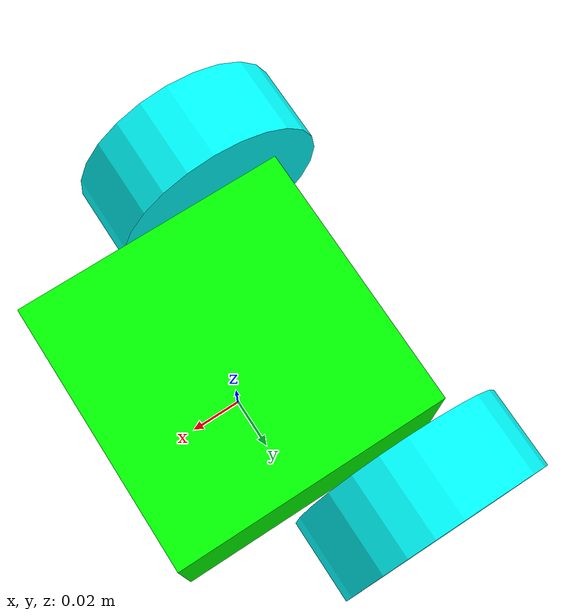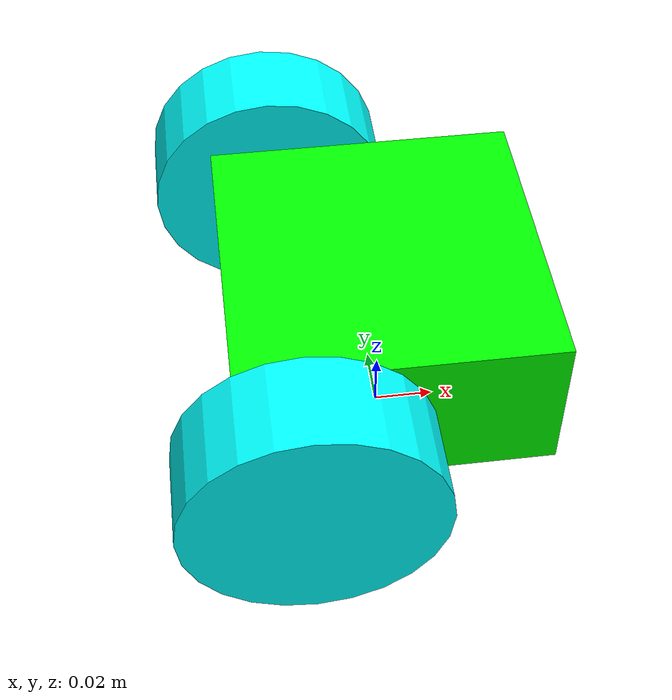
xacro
<?xml version="1.0"?>
<robot name="model" xmlns:xacro="http://ros.org/wiki/xacro">
    <!-- Materials -->
    <material name="red">
        <color rgba="1.0 0.0 0.0 1.0"/>
    </material>

    <material name="green">
        <color rgba="0.0 1.0 0.0 1.0"/>
    </material>

    <material name="blue">
        <color rgba="0.0 0.0 1.0 1.0"/>
    </material>

    <material name="yellow">
        <color rgba="1.0 1.0 0.0 1.0"/>
    </material>

    <material name="white">
        <color rgba="1.0 1.0 1.0 1.0"/>
    </material>

    <material name="aqua_blue">
        <color rgba="0.0 1.0 1.0 1.0"/>
    </material>

    <!-- Xacro properties -->
    <xacro:property name="robot_name" value="robot"/>
    <xacro:property name="spwan_height" value="0.05"/>

    <!-- Xacro macros -->
    <xacro:macro name="rectangle_inertia" params="mass width length">
        <inertia
            ixx="${width * width * mass / 12.0}"
            ixy="0.0"
            ixz="0.0"
            iyy="${length * length * mass / 12.0}"
            iyz="0.0"
            izz="${((length * length) + (width * width)) * mass / 12.0}"
        />
    </xacro:macro>

    <xacro:macro name="cylinder_inertia" params="mass radius height">
        <inertia
            ixx="${(3*radius*radius + height*height) * mass / 12.0}"
            ixy="0.0"
            ixz="0.0"
            iyy="${(3*radius*radius + height*height) * mass / 12.0}"
            iyz="0.0"
            izz="${mass*radius*radius / 2.0}"
        />
    </xacro:macro>

    <xacro:macro name="sphere_inertia" params="mass radius">
        <inertia
            ixx="${(2/5) * (mass*radius*radius)}"
            ixy="0.0"
            ixz="0.0"
            iyy="${(2/5) * (mass*radius*radius)}"
            iyz="0.0"
            izz="${(2/5) * (mass*radius*radius)}"
        />
    </xacro:macro>

    <!-- LINKS -->
    <link name="base_link">
        <visual>
            <geometry>
                <!-- Length, Width, Height in meters -->
                <box size="0.1 0.1 0.05"/>
            </geometry>
            <!-- Position in meters and rotation in radians -->
            <origin xyz="0.0 0.0 ${spwan_height}" rpy="0.0 0.0 0.0"/>
            <material name="green"/>
        </visual>

        <collision>
            <origin xyz="0.0 0.0 ${spwan_height}" rpy="0.0 0.0 0.0"/>
            <geometry>
                <box size="0.1 0.1 0.05"/>
            </geometry>
        </collision>

        <inertial>
            <origin xyz="0.0 0.0 ${spwan_height}" rpy="0.0 0.0 0.0"/>
            <mass value="0.5"/>
            <xacro:rectangle_inertia mass="0.5" width="0.1" length="0.1"/>
        </inertial>
    </link>

    <link name="left_wheel">
        <visual>
            <origin xyz="0.0 0.0 0.0" rpy="0.0 0.0 0.0"/>
            <geometry>
                <cylinder radius="0.04" length="0.03"/>
            </geometry>
            <material name="aqua_blue"/>
        </visual>

        <collision>
            <origin xyz="0.0 0.0 0.0" rpy="0.0 0.0 0.0"/>
            <geometry>
                <cylinder radius="0.04" length="0.03"/>
            </geometry>
        </collision>

        <inertial>
            <origin xyz="0.0 0.0 0.0" rpy="0.0 0.0 0.0"/>
            <mass value="0.1"/>
            <xacro:cylinder_inertia mass="0.1" radius="0.04" height="0.03"/>
        </inertial>
    </link>

    <link name="right_wheel">
        <origin xyz="0.0 0.0 0.0" rpy="0.0 0.0 0.0"/>
        <visual>
            <geometry>
                <cylinder radius="0.04" length="0.03"/>
            </geometry>
            <material name="aqua_blue"/>
        </visual>

        <collision>
            <origin xyz="0.0 0.0 0.0" rpy="0.0 0.0 0.0"/>
            <geometry>
                <cylinder radius="0.04" length="0.03"/>
            </geometry>
        </collision>

        <inertial>
            <origin xyz="0.0 0.0 0.0" rpy="0.0 0.0 0.0"/>
            <mass value="0.1"/>
            <xacro:cylinder_inertia mass="0.1" radius="0.04" height="0.03"/>
        </inertial>
    </link>

    <link name="caster_wheel">
        <visual>
            <origin xyz="0.0 0.0 0.0" rpy="0.0 0.0 0.0"/>
            <geometry>
                <sphere radius="0.01"/>
            </geometry>
            <material name="yellow"/>
        </visual>

        <collision>
            <origin xyz="0.0 0.0 0.0" rpy="0.0 0.0 0.0"/>
            <geometry>
                <sphere radius="0.01"/>
            </geometry>
        </collision>

        <inertial>
            <origin xyz="0.0 0.0 0.0" rpy="0.0 0.0 0.0"/>
            <mass value="0.1"/>
            <xacro:sphere_inertia mass="0.1" radius="0.01"/>
        </inertial>
    </link>

    <!-- JOINTS -->
    <joint name="left_wheel_joint" type="continuous">
        <parent link="base_link"/>
        <child link="left_wheel"/>
        <axis xyz="0.0 0.0 1.0"/>
        <origin xyz="-0.03 0.07 0.05" rpy="-1.57 0.0 0.0"/>
    </joint>

    <joint name="right_wheel_joint" type="continuous">
        <parent link="base_link"/>
        <child link="right_wheel"/>
        <axis xyz="0.0 0.0 1.0"/>
        <origin xyz="-0.03 -0.07 0.05" rpy="-1.57 0.0 0.0"/>
    </joint>

    <joint name="caster_wheel_joint" type="continuous">
        <parent link="base_link"/>
        <child link="caster_wheel"/>
        <axis xyz="1.0 1.0 1.0"/>
        <origin xyz="0.03 0.0 0.015" rpy="0.0 0.0 0.0"/>
    </joint>

    <!-- SENSORS -->
    <sensor name="ultrasound" type="ray">
        <always_on>true</always_on>
        <visualize>false</visualize>
        <pose>0.0 0.0 0.05 0 0 0</pose>
        <update_rate>50</update_rate>
        <ray>
            <scan>
                <horizontal>
                    <samples>5</samples>
                    <resolution>1.0</resolution>
                    <min_angle>-0.18</min_angle>
                    <max_angle>0.18</max_angle>
                </horizontal>
                <vertical>
                    <samples>5</samples>
                    <resolution>1.0</resolution>
                    <min_angle>-0.01</min_angle>
                    <max_angle>0.01</max_angle>
                </vertical>
            </scan>
            <range>
                <min>0.02</min>
                <max>8</max>
                <resolution>0.01</resolution>
            </range>
            <noise>
                <type>gaussian</type>
                <mean>0.0</mean>
                <stddev>0.01</stddev>
            </noise>
        </ray>
        <material>Gazebo/Blue</material>
    </sensor>

    <!-- Gazebo Plugins -->
    <gazebo>
        <plugin name="ignition::gazebo::systems::DiffDrive"
                filename="libignition-gazebo-diff-drive-system.so">
            <!-- Wheels -->
            <left_joint>left_wheel_joint</left_joint>
            <right_joint>right_wheel_joint</right_joint>

            <!-- Kinematics -->
            <wheel_separation>0.13</wheel_separation>
            <wheel_radius>0.04</wheel_radius>

            <!-- Output -->
            <odom_publish_frequency>5</odom_publish_frequency>

            <topic>cmd_vel</topic>
        </plugin>
        <plugin name="bytes_ultrasound" filename="libgazebo_ros_ray_sensor.so">
            <ros>
                <namespace>distance</namespace>
                <remapping>~/out:=ultrasonic</remapping>
            </ros>
            <output_type>sensor_msgs/Range</output_type>
            <radiation_type>ultrasound</radiation_type>
            <frame_name>ultrasonic_dist_sensor</frame_name>
        </plugin>
    </gazebo>

</robot>
